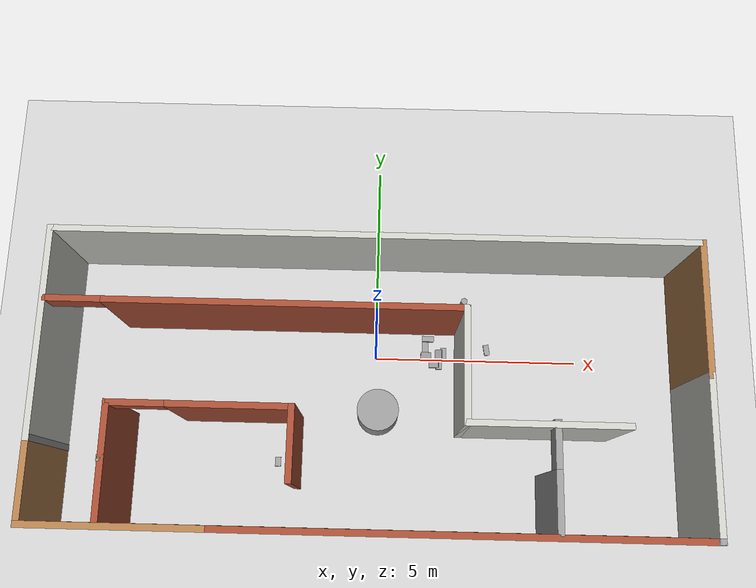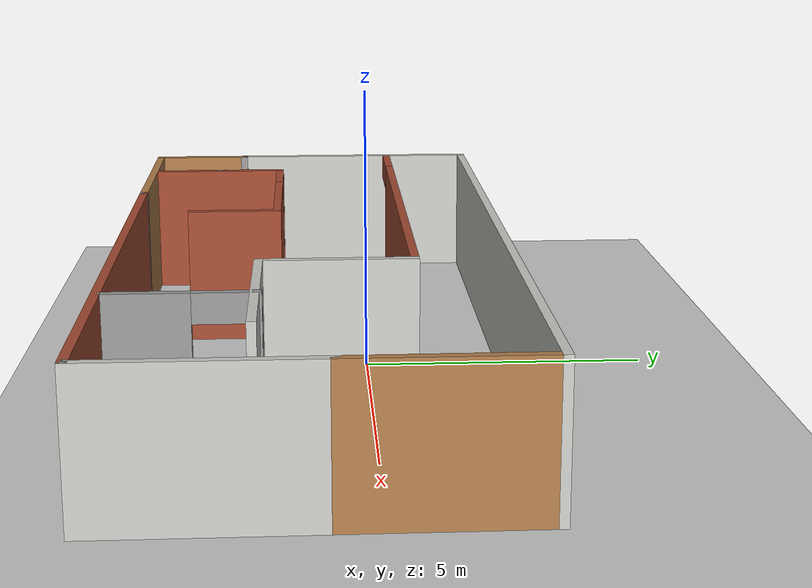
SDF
<sdf version="1.7">
 <world name="default">
  <light name="sun" type="directional">
   <pose>0 0 10 0 -0 0</pose>
   <diffuse>0.8 0.8 0.8 1</diffuse>
   <specular>0.2 0.2 0.2 1</specular>
   <attenuation>
    <range>1000</range>
    <constant>0.9</constant>
    <linear>0.01</linear>
    <quadratic>0.001</quadratic>
   </attenuation>
   <direction>-0.5 0.1 -0.9</direction>
   <spot><inner_angle>0</inner_angle><outer_angle>0</outer_angle><falloff>0</falloff></spot>
  </light>
  <model name="ground_plane">
   <static>1</static>
   <link name="link">
    <collision name="collision">
     <geometry><plane><normal>0 0 1</normal><size>100 100</size></plane></geometry>
     <surface><friction><ode><mu>100</mu><mu2>50</mu2></ode></friction></surface>
    </collision>
    <visual name="visual">
     <cast_shadows>0</cast_shadows>
     <geometry><plane><normal>0 0 1</normal><size>100 100</size></plane></geometry>
     <material>
      <script><uri>file://media/materials/scripts/gazebo.material</uri><name>Gazebo/Grey</name></script>
     </material>
    </visual>
   </link>
  </model>
  <gravity>0 0 -9.8</gravity>
  <magnetic_field>6e-06 2.3e-05 -4.2e-05</magnetic_field>
  <atmosphere type="adiabatic"/>
  <physics type="ode">
   <max_step_size>0.001</max_step_size>
   <real_time_factor>1</real_time_factor>
   <real_time_update_rate>1000</real_time_update_rate>
  </physics>
  <scene><ambient>0.4 0.4 0.4 1</ambient><background>0.7 0.7 0.7 1</background><shadows>1</shadows></scene>
  <audio><device>default</device></audio>
  <spherical_coordinates>
   <surface_model>EARTH_WGS84</surface_model>
   <latitude_deg>0</latitude_deg>
   <longitude_deg>0</longitude_deg>
   <elevation>0</elevation>
   <heading_deg>0</heading_deg>
  </spherical_coordinates>
  <model name="world1_new">
   <pose>-0.07 -0.93 0 0 -0 0</pose>
   <link name="Wall_0">
    <collision name="Wall_0_Collision">
     <geometry><box><size>0.16 0.15 2.5</size></box></geometry>
     <pose>0 0 1.25 0 -0 0</pose>
    </collision>
    <visual name="Wall_0_Visual">
     <pose>0 0 1.25 0 -0 0</pose>
     <geometry><box><size>0.16 0.15 2.5</size></box></geometry>
     <material>
      <script><uri>file://media/materials/scripts/gazebo.material</uri><name>Gazebo/Grey</name></script>
      <ambient>1 1 1 1</ambient>
     </material>
     <meta><layer>0</layer></meta>
    </visual>
    <pose>-3.575 -3.35 0 0 -0 0</pose>
   </link>
   <link name="Wall_1">
    <collision name="Wall_1_Collision">
     <geometry><box><size>11.25 0.15 2.5</size></box></geometry>
     <pose>0 0 1.25 0 -0 0</pose>
    </collision>
    <visual name="Wall_1_Visual">
     <pose>0 0 1.25 0 -0 0</pose>
     <geometry><box><size>11.25 0.15 2.5</size></box></geometry>
     <material>
      <script><uri>file://media/materials/scripts/gazebo.material</uri><name>Gazebo/Bricks</name></script>
      <ambient>1 1 1 1</ambient>
     </material>
     <meta><layer>0</layer></meta>
    </visual>
    <pose>1.98 -3.35 0 0 -0 0</pose>
   </link>
   <link name="Wall_11">
    <collision name="Wall_11_Collision">
     <geometry><box><size>2 0.15 2.5</size></box></geometry>
     <pose>0 0 1.25 0 -0 0</pose>
    </collision>
    <visual name="Wall_11_Visual">
     <pose>0 0 1.25 0 -0 0</pose>
     <geometry><box><size>2 0.15 2.5</size></box></geometry>
     <material>
      <script><uri>file://media/materials/scripts/gazebo.material</uri><name>Gazebo/Wood</name></script>
      <ambient>1 1 1 1</ambient>
     </material>
     <meta><layer>0</layer></meta>
    </visual>
    <pose>-7.55 -2.425 0 0 -0 -1.5708</pose>
   </link>
   <link name="Wall_12">
    <collision name="Wall_12_Collision">
     <geometry><box><size>4.13 0.15 2.5</size></box></geometry>
     <pose>0 0 1.25 0 -0 0</pose>
    </collision>
    <visual name="Wall_12_Visual">
     <pose>0 0 1.25 0 -0 0</pose>
     <geometry><box><size>4.13 0.15 2.5</size></box></geometry>
     <material>
      <script><uri>file://media/materials/scripts/gazebo.material</uri><name>Gazebo/Wood</name></script>
      <ambient>1 1 1 1</ambient>
     </material>
     <meta><layer>0</layer></meta>
    </visual>
    <pose>-5.56 -3.35 0 0 -0 0</pose>
   </link>
   <link name="Wall_13">
    <collision name="Wall_13_Collision">
     <geometry><box><size>0.15 0.15 2.5</size></box></geometry>
     <pose>0 0 1.25 0 -0 0</pose>
    </collision>
    <visual name="Wall_13_Visual">
     <pose>0 0 1.25 0 -0 0</pose>
     <geometry><box><size>0.15 0.15 2.5</size></box></geometry>
     <material>
      <script><uri>file://media/materials/scripts/gazebo.material</uri><name>Gazebo/Grey</name></script>
      <ambient>1 1 1 1</ambient>
     </material>
     <meta><layer>0</layer></meta>
    </visual>
    <pose>-3.57 -3.35 0 0 -0 0</pose>
   </link>
   <link name="Wall_16">
    <collision name="Wall_16_Collision">
     <geometry><box><size>0.15 0.15 2.5</size></box></geometry>
     <pose>0 0 1.25 0 -0 0</pose>
    </collision>
    <visual name="Wall_16_Visual">
     <pose>0 0 1.25 0 -0 0</pose>
     <geometry><box><size>0.15 0.15 2.5</size></box></geometry>
     <material>
      <script><uri>file://media/materials/scripts/gazebo.material</uri><name>Gazebo/Grey</name></script>
      <ambient>1 1 1 1</ambient>
     </material>
     <meta><layer>0</layer></meta>
    </visual>
    <pose>-5.89 -1.9 0 0 -0 0</pose>
   </link>
   <link name="Wall_19">
    <collision name="Wall_19_Collision">
     <geometry><box><size>2.75 0.15 2.5</size></box></geometry>
     <pose>0 0 1.25 0 -0 0</pose>
    </collision>
    <visual name="Wall_19_Visual">
     <pose>0 0 1.25 0 -0 0</pose>
     <geometry><box><size>2.75 0.15 2.5</size></box></geometry>
     <material>
      <script><uri>file://media/materials/scripts/gazebo.material</uri><name>Gazebo/Bricks</name></script>
      <ambient>1 1 1 1</ambient>
     </material>
     <meta><layer>0</layer></meta>
    </visual>
    <pose>-5.87 -1.98 0 0 -0 1.5708</pose>
   </link>
   <link name="Wall_2">
    <collision name="Wall_2_Collision">
     <geometry><box><size>0.16 0.15 2.5</size></box></geometry>
     <pose>0 0 1.25 0 -0 0</pose>
    </collision>
    <visual name="Wall_2_Visual">
     <pose>0 0 1.25 0 -0 0</pose>
     <geometry><box><size>0.16 0.15 2.5</size></box></geometry>
     <material>
      <script><uri>file://media/materials/scripts/gazebo.material</uri><name>Gazebo/Grey</name></script>
      <ambient>1 1 1 1</ambient>
     </material>
     <meta><layer>0</layer></meta>
    </visual>
    <pose>7.535 -3.35 0 0 -0 0</pose>
   </link>
   <link name="Wall_20">
    <pose>-3.82 -0.68 0 0 -0 0</pose>
    <visual name="Wall_20_Visual_0">
     <pose>-2.095 0 1.25 0 -0 0</pose>
     <geometry><box><size>0.06 0.15 2.5</size></box></geometry>
     <material>
      <script><uri>file://media/materials/scripts/gazebo.material</uri><name>Gazebo/Bricks</name></script>
      <ambient>1 1 1 1</ambient>
     </material>
     <meta><layer>0</layer></meta>
    </visual>
    <collision name="Wall_20_Collision_0">
     <geometry><box><size>0.06 0.15 2.5</size></box></geometry>
     <pose>-2.095 0 1.25 0 -0 0</pose>
    </collision>
    <visual name="Wall_20_Visual_1">
     <pose>0.68 0 1.25 0 -0 0</pose>
     <geometry><box><size>2.89 0.15 2.5</size></box></geometry>
     <material>
      <script><uri>file://media/materials/scripts/gazebo.material</uri><name>Gazebo/Bricks</name></script>
      <ambient>1 1 1 1</ambient>
     </material>
     <meta><layer>0</layer></meta>
    </visual>
    <collision name="Wall_20_Collision_1">
     <geometry><box><size>2.89 0.15 2.5</size></box></geometry>
     <pose>0.68 0 1.25 0 -0 0</pose>
    </collision>
    <visual name="Wall_20_Visual_2">
     <pose>-1.415 0 2.25 0 -0 0</pose>
     <geometry><box><size>1.3 0.15 0.5</size></box></geometry>
     <material>
      <script><uri>file://media/materials/scripts/gazebo.material</uri><name>Gazebo/Bricks</name></script>
      <ambient>1 1 1 1</ambient>
     </material>
     <meta><layer>0</layer></meta>
    </visual>
    <collision name="Wall_20_Collision_2">
     <geometry><box><size>1.3 0.15 0.5</size></box></geometry>
     <pose>-1.415 0 2.25 0 -0 0</pose>
    </collision>
   </link>
   <link name="Wall_21">
    <collision name="Wall_21_Collision">
     <geometry><box><size>1.75 0.15 2.5</size></box></geometry>
     <pose>0 0 1.25 0 -0 0</pose>
    </collision>
    <visual name="Wall_21_Visual">
     <pose>0 0 1.25 0 -0 0</pose>
     <geometry><box><size>1.75 0.15 2.5</size></box></geometry>
     <material>
      <script><uri>file://media/materials/scripts/gazebo.material</uri><name>Gazebo/Bricks</name></script>
      <ambient>1 1 1 1</ambient>
     </material>
     <meta><layer>0</layer></meta>
    </visual>
    <pose>-1.77 -1.48 0 0 -0 -1.5708</pose>
   </link>
   <link name="Wall_23">
    <pose>-2.68 1.67 0 0 -0 0</pose>
    <visual name="Wall_23_Visual_0">
     <pose>-4.84 0 1.25 0 -0 0</pose>
     <geometry><box><size>0.07 0.15 2.5</size></box></geometry>
     <material>
      <script><uri>file://media/materials/scripts/gazebo.material</uri><name>Gazebo/Bricks</name></script>
      <ambient>1 1 1 1</ambient>
     </material>
     <meta><layer>0</layer></meta>
    </visual>
    <collision name="Wall_23_Collision_0">
     <geometry><box><size>0.07 0.15 2.5</size></box></geometry>
     <pose>-4.84 0 1.25 0 -0 0</pose>
    </collision>
    <visual name="Wall_23_Visual_1">
     <pose>0.665 0 1.25 0 -0 0</pose>
     <geometry><box><size>8.42 0.15 2.5</size></box></geometry>
     <material>
      <script><uri>file://media/materials/scripts/gazebo.material</uri><name>Gazebo/Bricks</name></script>
      <ambient>1 1 1 1</ambient>
     </material>
     <meta><layer>0</layer></meta>
    </visual>
    <collision name="Wall_23_Collision_1">
     <geometry><box><size>8.42 0.15 2.5</size></box></geometry>
     <pose>0.665 0 1.25 0 -0 0</pose>
    </collision>
    <visual name="Wall_23_Visual_2">
     <pose>-4.175 0 2.25 0 -0 0</pose>
     <geometry><box><size>1.26 0.15 0.5</size></box></geometry>
     <material>
      <script><uri>file://media/materials/scripts/gazebo.material</uri><name>Gazebo/Bricks</name></script>
      <ambient>1 1 1 1</ambient>
     </material>
     <meta><layer>0</layer></meta>
    </visual>
    <collision name="Wall_23_Collision_2">
     <geometry><box><size>1.26 0.15 0.5</size></box></geometry>
     <pose>-4.175 0 2.25 0 -0 0</pose>
    </collision>
   </link>
   <link name="Wall_24">
    <collision name="Wall_24_Collision">
     <geometry><box><size>2.75 0.15 2.5</size></box></geometry>
     <pose>0 0 1.25 0 -0 0</pose>
    </collision>
    <visual name="Wall_24_Visual">
     <pose>0 0 1.25 0 -0 0</pose>
     <geometry><box><size>2.75 0.15 2.5</size></box></geometry>
     <material>
      <script><uri>file://media/materials/scripts/gazebo.material</uri><name>Gazebo/CeilingTiled</name></script>
      <ambient>1 1 1 1</ambient>
     </material>
     <meta><layer>0</layer></meta>
    </visual>
    <pose>2.12 0.37 0 0 -0 -1.5708</pose>
   </link>
   <link name="Wall_25">
    <collision name="Wall_25_Collision">
     <geometry><box><size>3.75 0.15 2.5</size></box></geometry>
     <pose>0 0 1.25 0 -0 0</pose>
    </collision>
    <visual name="Wall_25_Visual">
     <pose>0 0 1.25 0 -0 0</pose>
     <geometry><box><size>3.75 0.15 2.5</size></box></geometry>
     <material>
      <script><uri>file://media/materials/scripts/gazebo.material</uri><name>Gazebo/CeilingTiled</name></script>
      <ambient>1 1 1 1</ambient>
     </material>
     <meta><layer>0</layer></meta>
    </visual>
    <pose>3.92 -0.93 0 0 -0 0</pose>
   </link>
   <link name="Wall_27">
    <collision name="Wall_27_Collision">
     <geometry><box><size>0.16 0.15 2.5</size></box></geometry>
     <pose>0 0 1.25 0 -0 0</pose>
    </collision>
    <visual name="Wall_27_Visual">
     <pose>0 0 1.25 0 -0 0</pose>
     <geometry><box><size>0.16 0.15 2.5</size></box></geometry>
     <material>
      <script><uri>file://media/materials/scripts/gazebo.material</uri><name>Gazebo/Grey</name></script>
      <ambient>1 1 1 1</ambient>
     </material>
     <meta><layer>0</layer></meta>
    </visual>
    <pose>4.105 -0.89 0 0 -0 0</pose>
   </link>
   <link name="Wall_28">
    <pose>4.11 -2.065 0 0 -0 -1.5708</pose>
    <visual name="Wall_28_Visual_0">
     <pose>-1.1575 0 1.25 0 -0 0</pose>
     <geometry><box><size>0.185 0.15 2.5</size></box></geometry>
     <material>
      <script><uri>file://media/materials/scripts/gazebo.material</uri><name>Gazebo/Grey</name></script>
      <ambient>1 1 1 1</ambient>
     </material>
     <meta><layer>0</layer></meta>
    </visual>
    <collision name="Wall_28_Collision_0">
     <geometry><box><size>0.185 0.15 2.5</size></box></geometry>
     <pose>-1.1575 0 1.25 0 -0 0</pose>
    </collision>
    <visual name="Wall_28_Visual_1">
     <pose>0.5425 0 1.25 0 -0 0</pose>
     <geometry><box><size>1.415 0.15 2.5</size></box></geometry>
     <material>
      <script><uri>file://media/materials/scripts/gazebo.material</uri><name>Gazebo/Grey</name></script>
      <ambient>1 1 1 1</ambient>
     </material>
     <meta><layer>0</layer></meta>
    </visual>
    <collision name="Wall_28_Collision_1">
     <geometry><box><size>1.415 0.15 2.5</size></box></geometry>
     <pose>0.5425 0 1.25 0 -0 0</pose>
    </collision>
    <visual name="Wall_28_Visual_2">
     <pose>-0.615 0 2.25 0 -0 0</pose>
     <geometry><box><size>0.9 0.15 0.5</size></box></geometry>
     <material>
      <script><uri>file://media/materials/scripts/gazebo.material</uri><name>Gazebo/Grey</name></script>
      <ambient>1 1 1 1</ambient>
     </material>
     <meta><layer>0</layer></meta>
    </visual>
    <collision name="Wall_28_Collision_2">
     <geometry><box><size>0.9 0.15 0.5</size></box></geometry>
     <pose>-0.615 0 2.25 0 -0 0</pose>
    </collision>
   </link>
   <link name="Wall_3">
    <collision name="Wall_3_Collision">
     <geometry><box><size>0.16 0.15 2.5</size></box></geometry>
     <pose>0 0 1.25 0 -0 0</pose>
    </collision>
    <visual name="Wall_3_Visual">
     <pose>0 0 1.25 0 -0 0</pose>
     <geometry><box><size>0.16 0.15 2.5</size></box></geometry>
     <material>
      <script><uri>file://media/materials/scripts/gazebo.material</uri><name>Gazebo/Grey</name></script>
      <ambient>1 1 1 1</ambient>
     </material>
     <meta><layer>0</layer></meta>
    </visual>
    <pose>7.545 -3.35 0 0 -0 0</pose>
   </link>
   <link name="Wall_4">
    <collision name="Wall_4_Collision">
     <geometry><box><size>3.75 0.15 2.5</size></box></geometry>
     <pose>0 0 1.25 0 -0 0</pose>
    </collision>
    <visual name="Wall_4_Visual">
     <pose>0 0 1.25 0 -0 0</pose>
     <geometry><box><size>3.75 0.15 2.5</size></box></geometry>
     <material>
      <script><uri>file://media/materials/scripts/gazebo.material</uri><name>Gazebo/CeilingTiled</name></script>
      <ambient>1 1 1 1</ambient>
     </material>
     <meta><layer>0</layer></meta>
    </visual>
    <pose>7.55 -1.55 0 0 -0 1.5708</pose>
   </link>
   <link name="Wall_6">
    <collision name="Wall_6_Collision">
     <geometry><box><size>3.25 0.15 2.5</size></box></geometry>
     <pose>0 0 1.25 0 -0 0</pose>
    </collision>
    <visual name="Wall_6_Visual">
     <pose>0 0 1.25 0 -0 0</pose>
     <geometry><box><size>3.25 0.15 2.5</size></box></geometry>
     <material>
      <script><uri>file://media/materials/scripts/gazebo.material</uri><name>Gazebo/Wood</name></script>
      <ambient>1 1 1 1</ambient>
     </material>
     <meta><layer>0</layer></meta>
    </visual>
    <pose>7.55 1.8 0 0 -0 1.5708</pose>
   </link>
   <link name="Wall_7">
    <collision name="Wall_7_Collision">
     <geometry><box><size>15.25 0.15 2.5</size></box></geometry>
     <pose>0 0 1.25 0 -0 0</pose>
    </collision>
    <visual name="Wall_7_Visual">
     <pose>0 0 1.25 0 -0 0</pose>
     <geometry><box><size>15.25 0.15 2.5</size></box></geometry>
     <material>
      <script><uri>file://media/materials/scripts/gazebo.material</uri><name>Gazebo/CeilingTiled</name></script>
      <ambient>1 1 1 1</ambient>
     </material>
     <meta><layer>0</layer></meta>
    </visual>
    <pose>-0 3.35 0 0 -0 3.14159</pose>
   </link>
   <link name="Wall_8">
    <collision name="Wall_8_Collision">
     <geometry><box><size>5 0.15 2.5</size></box></geometry>
     <pose>0 0 1.25 0 -0 0</pose>
    </collision>
    <visual name="Wall_8_Visual">
     <pose>0 0 1.25 0 -0 0</pose>
     <geometry><box><size>5 0.15 2.5</size></box></geometry>
     <material>
      <script><uri>file://media/materials/scripts/gazebo.material</uri><name>Gazebo/CeilingTiled</name></script>
      <ambient>1 1 1 1</ambient>
     </material>
     <meta><layer>0</layer></meta>
    </visual>
    <pose>-7.55 0.925 0 0 -0 -1.5708</pose>
   </link>
   <link name="Wall_9">
    <collision name="Wall_9_Collision">
     <geometry><box><size>0.16 0.15 2.5</size></box></geometry>
     <pose>0 0 1.25 0 -0 0</pose>
    </collision>
    <visual name="Wall_9_Visual">
     <pose>0 0 1.25 0 -0 0</pose>
     <geometry><box><size>0.16 0.15 2.5</size></box></geometry>
     <material>
      <script><uri>file://media/materials/scripts/gazebo.material</uri><name>Gazebo/Grey</name></script>
      <ambient>1 1 1 1</ambient>
     </material>
     <meta><layer>0</layer></meta>
    </visual>
    <pose>-7.545 -1.5 0 0 -0 0</pose>
   </link>
   <static>1</static>
  </model>
  <model name="unit_cylinder">
   <pose>0.070811 -1.42648 0.499993 -2e-06 -1e-06 0</pose>
   <link name="link">
    <inertial>
     <mass>1</mass>
     <inertia><ixx>0.145833</ixx><ixy>0</ixy><ixz>0</ixz><iyy>0.145833</iyy><iyz>0</iyz><izz>0.125</izz></inertia>
    </inertial>
    <collision name="collision">
     <geometry><cylinder><radius>0.5</radius><length>1</length></cylinder></geometry>
    </collision>
    <visual name="visual">
     <geometry><cylinder><radius>0.5</radius><length>1</length></cylinder></geometry>
     <material>
      <script><name>Gazebo/Grey</name><uri>file://media/materials/scripts/gazebo.material</uri></script>
     </material>
    </visual>
   </link>
  </model>
  <model name="unit_box">
   <pose>1.40599 -0.263686 0.826434 -2e-06 -0.224666 -0.000157</pose>
   <link name="link">
    <inertial>
     <mass>1</mass>
     <inertia>
      <ixx>0.166667</ixx>
      <ixy>0</ixy>
      <ixz>0</ixz>
      <iyy>0.166667</iyy>
      <iyz>0</iyz>
      <izz>0.166667</izz>
     </inertia>
    </inertial>
    <collision name="collision">
     <geometry><box><size>0.237565 0.154176 0.051249</size></box></geometry>
    </collision>
    <visual name="visual">
     <geometry><box><size>0.237565 0.154176 0.051249</size></box></geometry>
     <material>
      <script><name>Gazebo/Grey</name><uri>file://media/materials/scripts/gazebo.material</uri></script>
     </material>
    </visual>
   </link>
  </model>
  <model name="unit_box_0">
   <pose>1.25503 0.364344 0.811333 -0.255026 -0.000392 -0.024853</pose>
   <link name="link">
    <inertial>
     <mass>1</mass>
     <inertia>
      <ixx>0.166667</ixx>
      <ixy>0</ixy>
      <ixz>0</ixz>
      <iyy>0.166667</iyy>
      <iyz>0</iyz>
      <izz>0.166667</izz>
     </inertia>
    </inertial>
    <collision name="collision">
     <geometry><box><size>0.278152 0.145877 0.036992</size></box></geometry>
    </collision>
    <visual name="visual">
     <geometry><box><size>0.278152 0.145877 0.036992</size></box></geometry>
     <material>
      <script><name>Gazebo/Grey</name><uri>file://media/materials/scripts/gazebo.material</uri></script>
     </material>
    </visual>
   </link>
  </model>
  <model name="unit_box_1">
   <pose>1.19125 0.166945 0.791951 -6e-06 -4e-06 -0.024656</pose>
   <link name="link">
    <inertial>
     <mass>1</mass>
     <inertia>
      <ixx>0.166667</ixx>
      <ixy>0</ixy>
      <ixz>0</ixz>
      <iyy>0.166667</iyy>
      <iyz>0</iyz>
      <izz>0.166667</izz>
     </inertia>
    </inertial>
    <collision name="collision">
     <geometry><box><size>0.147361 0.268916 0.033938</size></box></geometry>
    </collision>
    <visual name="visual">
     <geometry><box><size>0.147361 0.268916 0.033938</size></box></geometry>
     <material>
      <script><name>Gazebo/Grey</name><uri>file://media/materials/scripts/gazebo.material</uri></script>
     </material>
    </visual>
   </link>
  </model>
  <model name="unit_box_2">
   <pose>1.51649 -0.015437 0.829398 -2.2e-05 -0.368824 0.003494</pose>
   <link name="link">
    <inertial>
     <mass>1</mass>
     <inertia>
      <ixx>0.166667</ixx>
      <ixy>0</ixy>
      <ixz>0</ixz>
      <iyy>0.166667</iyy>
      <iyz>0</iyz>
      <izz>0.166667</izz>
     </inertia>
    </inertial>
    <collision name="collision">
     <geometry><box><size>0.168382 0.226269 0.051369</size></box></geometry>
    </collision>
    <visual name="visual">
     <geometry><box><size>0.168382 0.226269 0.051369</size></box></geometry>
     <material>
      <script><name>Gazebo/Grey</name><uri>file://media/materials/scripts/gazebo.material</uri></script>
     </material>
    </visual>
   </link>
  </model>
  <model name="unit_box_3">
   <pose>1.52851 -0.27584 0.793206 -1.57076 -3e-06 -1.57084</pose>
   <link name="link">
    <inertial>
     <mass>1</mass>
     <inertia>
      <ixx>0.166667</ixx>
      <ixy>0</ixy>
      <ixz>0</ixz>
      <iyy>0.166667</iyy>
      <iyz>0</iyz>
      <izz>0.166667</izz>
     </inertia>
    </inertial>
    <collision name="collision">
     <geometry><box><size>0.199307 0.036664 0.145423</size></box></geometry>
    </collision>
    <visual name="visual">
     <geometry><box><size>0.199307 0.036664 0.145423</size></box></geometry>
     <material>
      <script><name>Gazebo/Grey</name><uri>file://media/materials/scripts/gazebo.material</uri></script>
     </material>
    </visual>
   </link>
  </model>
  <model name="unit_box_4">
   <pose>2.78633 0.291569 0.021844 -3e-06 1.57079 0.153874</pose>
   <link name="link">
    <inertial>
     <mass>1</mass>
     <inertia>
      <ixx>0.166667</ixx>
      <ixy>0</ixy>
      <ixz>0</ixz>
      <iyy>0.166667</iyy>
      <iyz>0</iyz>
      <izz>0.166667</izz>
     </inertia>
    </inertial>
    <collision name="collision">
     <geometry><box><size>0.043687 0.264886 0.131889</size></box></geometry>
    </collision>
    <visual name="visual">
     <geometry><box><size>0.043687 0.264886 0.131889</size></box></geometry>
     <material>
      <script><name>Gazebo/Grey</name><uri>file://media/materials/scripts/gazebo.material</uri></script>
     </material>
    </visual>
   </link>
  </model>
  <model name="unit_box_5">
   <pose>1.63434 0.008581 0.798902 -2.55916 1.57079 -0.984886</pose>
   <link name="link">
    <inertial>
     <mass>1</mass>
     <inertia>
      <ixx>0.166667</ixx>
      <ixy>0</ixy>
      <ixz>0</ixz>
      <iyy>0.166667</iyy>
      <iyz>0</iyz>
      <izz>0.166667</izz>
     </inertia>
    </inertial>
    <collision name="collision"><geometry><box><size>0.047845 0.12739 0.286997</size></box></geometry></collision>
    <visual name="visual">
     <geometry><box><size>0.047845 0.12739 0.286997</size></box></geometry>
     <material>
      <script><name>Gazebo/Grey</name><uri>file://media/materials/scripts/gazebo.material</uri></script>
     </material>
    </visual>
   </link>
  </model>
  <model name="unit_box_6">
   <pose>-2.34759 -2.6347 0.022164 5e-06 -0 0.000733</pose>
   <link name="link">
    <inertial>
     <mass>1</mass>
     <inertia>
      <ixx>0.166667</ixx>
      <ixy>0</ixy>
      <ixz>0</ixz>
      <iyy>0.166667</iyy>
      <iyz>0</iyz>
      <izz>0.166667</izz>
     </inertia>
    </inertial>
    <collision name="collision">
     <geometry><box><size>0.137445 0.227645 0.044326</size></box></geometry>
    </collision>
    <visual name="visual">
     <geometry><box><size>0.137445 0.227645 0.044326</size></box></geometry>
     <material>
      <script><name>Gazebo/Grey</name><uri>file://media/materials/scripts/gazebo.material</uri></script>
     </material>
    </visual>
   </link>
  </model>
  <model name="unit_box_7">
   <pose>1.20994 -0.043196 0.816089 -1.34998 2.3e-05 -0.024634</pose>
   <link name="link">
    <inertial>
     <mass>1</mass>
     <inertia>
      <ixx>0.166667</ixx>
      <ixy>0</ixy>
      <ixz>0</ixz>
      <iyy>0.166667</iyy>
      <iyz>0</iyz>
      <izz>0.166667</izz>
     </inertia>
    </inertial>
    <collision name="collision">
     <geometry><box><size>0.249133 0.046891 0.165701</size></box></geometry>
    </collision>
    <visual name="visual">
     <geometry><box><size>0.249133 0.046891 0.165701</size></box></geometry>
     <material>
      <script><name>Gazebo/Grey</name><uri>file://media/materials/scripts/gazebo.material</uri></script>
     </material>
    </visual>
   </link>
  </model>
  <model name="unit_cylinder_0">
   <pose>2.19001 1.46223 0.206915 0 -0 0.000273</pose>
   <link name="link">
    <inertial>
     <mass>1</mass>
     <inertia><ixx>0.145833</ixx><ixy>0</ixy><ixz>0</ixz><iyy>0.145833</iyy><iyz>0</iyz><izz>0.125</izz></inertia>
    </inertial>
    <collision name="collision">
     <geometry><cylinder><radius>0.0784837</radius><length>0.413847</length></cylinder></geometry>
    </collision>
    <visual name="visual">
     <geometry><cylinder><radius>0.0784837</radius><length>0.413847</length></cylinder></geometry>
     <material>
      <script><name>Gazebo/Grey</name><uri>file://media/materials/scripts/gazebo.material</uri></script>
     </material>
    </visual>
   </link>
  </model>
 </world>
</sdf>
